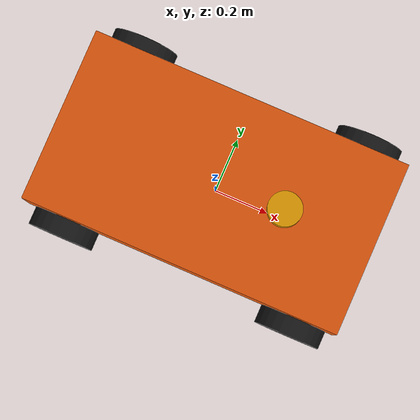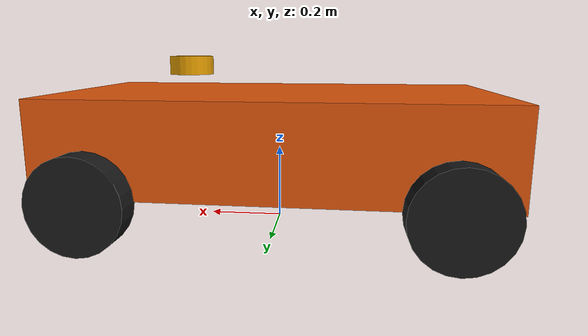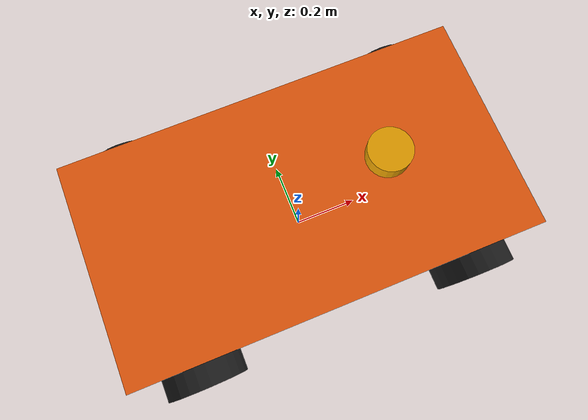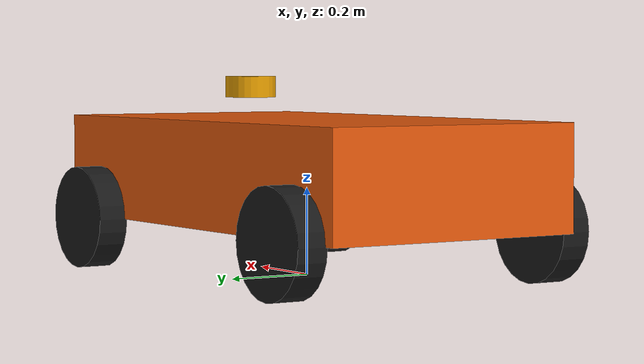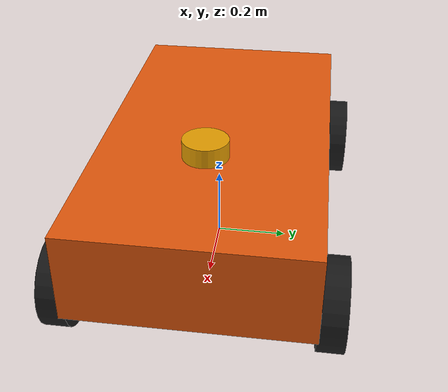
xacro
<?xml version="1.0"?>
<robot xmlns:xacro="http://www.ros.org/wiki/xacro" name="ackermann_agv">
  <xacro:property name="wheel_radius" value="0.12"/>
  <xacro:property name="wheel_width" value="0.07"/>
  <link name="base_footprint"/>
  <link name="base_link">
    <visual><geometry><box size="1.15 0.62 0.24"/></geometry><material name="orange"><color rgba="0.9 0.35 0.05 1"/></material></visual>
    <collision><geometry><box size="1.15 0.62 0.24"/></geometry></collision>
    <inertial><mass value="55"/><inertia ixx="2.4" ixy="0" ixz="0" iyy="5.8" iyz="0" izz="7.2"/></inertial>
  </link>
  <joint name="base_footprint_joint" type="fixed"><parent link="base_footprint"/><child link="base_link"/><origin xyz="0 0 0.24"/></joint>

  <xacro:macro name="wheel_link" params="name">
    <link name="${name}_wheel">
      <visual><origin rpy="1.5708 0 0"/><geometry><cylinder radius="${wheel_radius}" length="${wheel_width}"/></geometry><material name="dark"><color rgba="0.1 0.1 0.1 1"/></material></visual>
      <collision><origin rpy="1.5708 0 0"/><geometry><cylinder radius="${wheel_radius}" length="${wheel_width}"/></geometry></collision>
      <inertial><mass value="1.5"/><inertia ixx="0.012" ixy="0" ixz="0" iyy="0.006" iyz="0" izz="0.012"/></inertial>
    </link>
    <gazebo reference="${name}_wheel"><mu1>1.3</mu1><mu2>0.6</mu2></gazebo>
  </xacro:macro>
  <xacro:macro name="front_wheel" params="side y">
    <link name="front_${side}_steering_link"><inertial><mass value="0.5"/><inertia ixx="0.003" ixy="0" ixz="0" iyy="0.003" iyz="0" izz="0.003"/></inertial></link>
    <joint name="front_${side}_steering_joint" type="revolute"><parent link="base_link"/><child link="front_${side}_steering_link"/><origin xyz="0.43 ${y} -0.12"/><axis xyz="0 0 1"/><limit lower="-0.55" upper="0.55" effort="80" velocity="2"/></joint>
    <xacro:wheel_link name="front_${side}"/>
    <joint name="front_${side}_wheel_joint" type="continuous"><parent link="front_${side}_steering_link"/><child link="front_${side}_wheel"/><axis xyz="0 1 0"/><dynamics damping="0.03"/></joint>
  </xacro:macro>
  <xacro:macro name="rear_wheel" params="side y">
    <xacro:wheel_link name="rear_${side}"/>
    <joint name="rear_${side}_wheel_joint" type="continuous"><parent link="base_link"/><child link="rear_${side}_wheel"/><origin xyz="-0.43 ${y} -0.12"/><axis xyz="0 1 0"/><dynamics damping="0.03"/></joint>
  </xacro:macro>
  <xacro:front_wheel side="left" y="0.34"/><xacro:front_wheel side="right" y="-0.34"/>
  <xacro:rear_wheel side="left" y="0.34"/><xacro:rear_wheel side="right" y="-0.34"/>

  <link name="laser_frame"><visual><geometry><cylinder radius="0.06" length="0.05"/></geometry></visual><inertial><mass value="0.5"/><inertia ixx="0.001" ixy="0" ixz="0" iyy="0.001" iyz="0" izz="0.001"/></inertial></link>
  <joint name="laser_joint" type="fixed"><parent link="base_link"/><child link="laser_frame"/><origin xyz="0.25 0 0.19"/></joint>
  <link name="imu_link"/><joint name="imu_joint" type="fixed"><parent link="base_link"/><child link="imu_link"/></joint>
  <link name="gps_link"/><joint name="gps_joint" type="fixed"><parent link="base_link"/><child link="gps_link"/><origin xyz="0 0 0.22"/></joint>
  <gazebo reference="laser_frame"><sensor name="lidar" type="gpu_lidar"><topic>scan</topic><update_rate>10</update_rate><lidar><scan><horizontal><samples>720</samples><resolution>1</resolution><min_angle>-3.14159265</min_angle><max_angle>3.14159265</max_angle></horizontal></scan><range><min>0.10</min><max>20.0</max><resolution>0.01</resolution></range></lidar><always_on>true</always_on><visualize>true</visualize></sensor></gazebo>
  <gazebo>
    <plugin filename="gz-sim-ackermann-steering-system" name="gz::sim::systems::AckermannSteering">
      <left_joint>front_left_wheel_joint</left_joint><left_joint>rear_left_wheel_joint</left_joint>
      <right_joint>front_right_wheel_joint</right_joint><right_joint>rear_right_wheel_joint</right_joint>
      <left_steering_joint>front_left_steering_joint</left_steering_joint>
      <right_steering_joint>front_right_steering_joint</right_steering_joint>
      <kingpin_width>0.68</kingpin_width><steering_limit>0.52</steering_limit>
      <wheel_base>0.86</wheel_base><wheel_separation>0.68</wheel_separation><wheel_radius>${wheel_radius}</wheel_radius>
      <min_velocity>-1.5</min_velocity><max_velocity>1.5</max_velocity>
      <min_acceleration>-2.0</min_acceleration><max_acceleration>2.0</max_acceleration>
    </plugin>
  </gazebo>
</robot>
